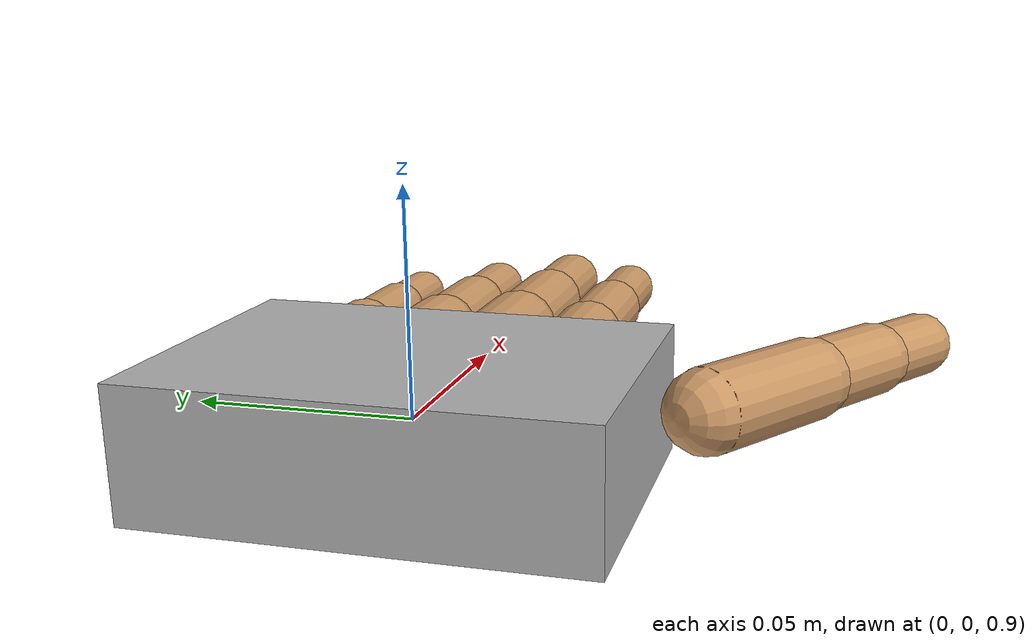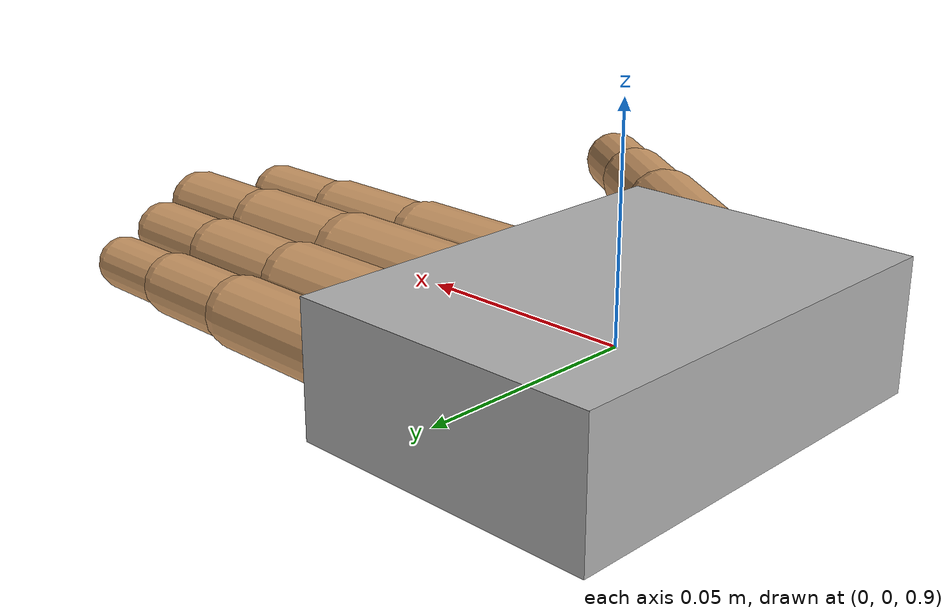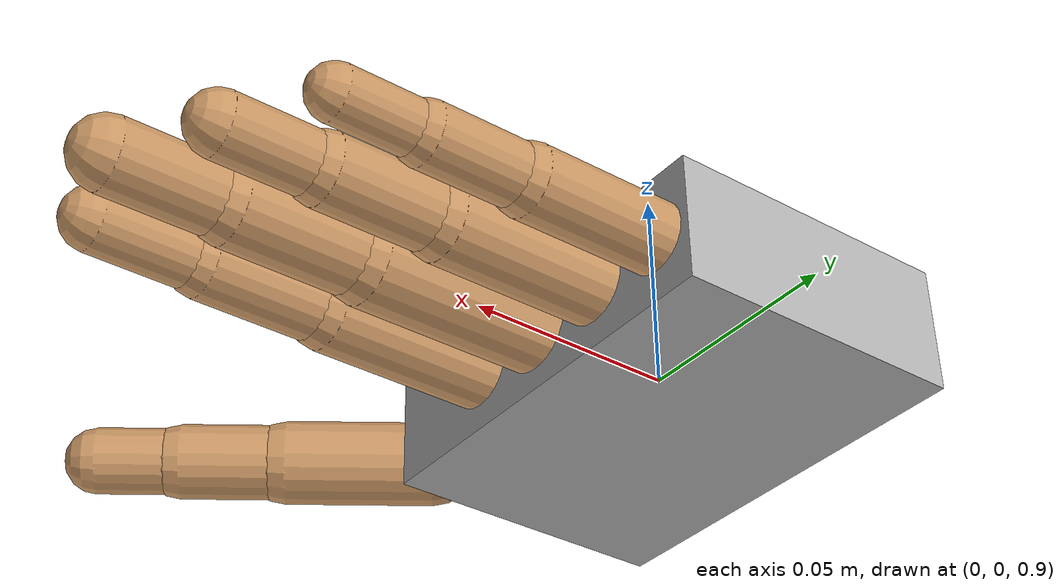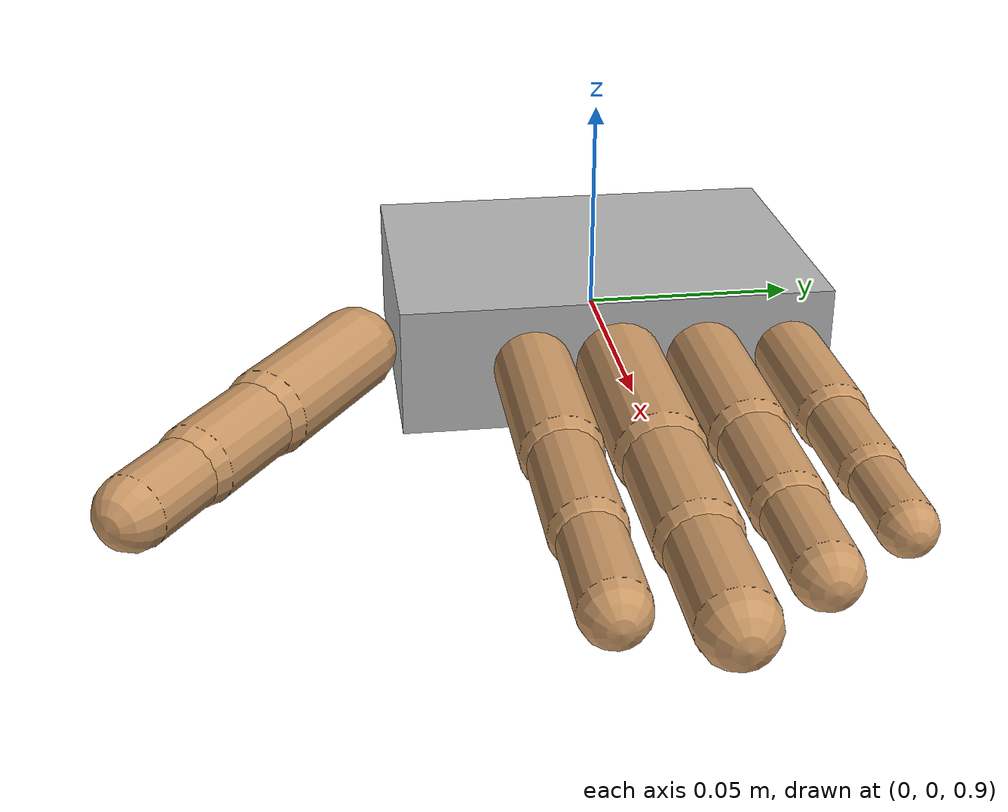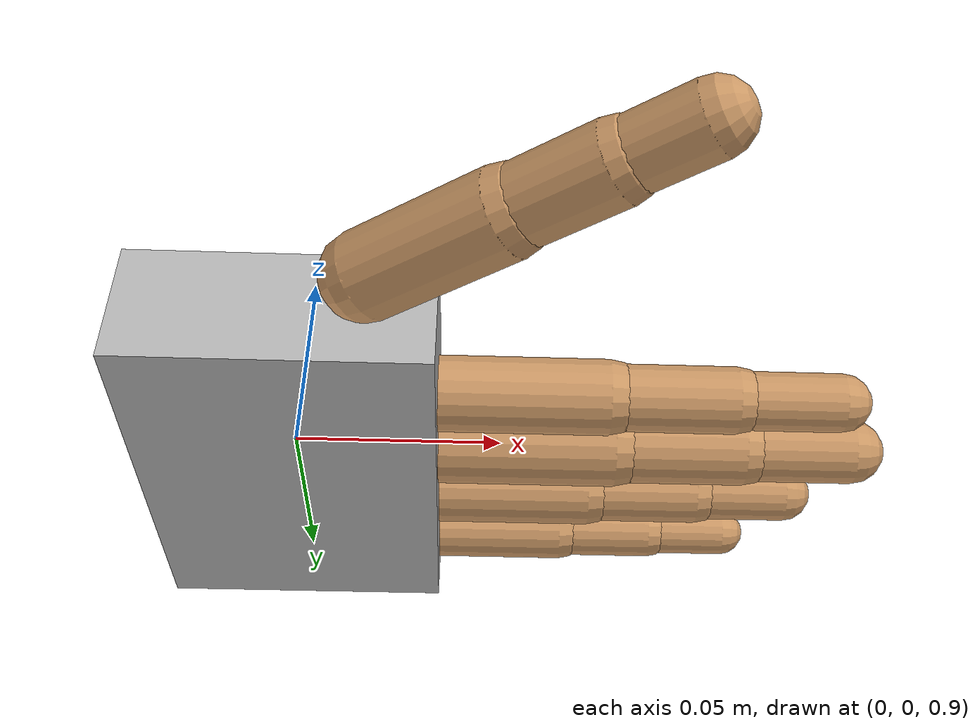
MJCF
<mujoco model="robot_hand">
  <compiler angle="radian"/>

  <default>
    <geom rgba="0.8 0.6 0.4 1" condim="3" friction="1 0.5 0.5"/>
    <joint damping="1.5" armature="0.02" limited="true"/>
    <motor ctrllimited="true" ctrlrange="-2 2"/>
  </default>

  <option timestep="0.002" integrator="RK4"/>

  <visual>
    <map znear="0.01" zfar="5"/>
  </visual>

  <asset>
    <texture type="skybox" builtin="gradient" rgb1="0.9 0.95 1" rgb2="0.2 0.3 0.5" width="256" height="256"/>
  </asset>

  <worldbody>
    <light pos="0 0 2" dir="0 0 -1" diffuse="1 1 1"/>
    <camera name="main" pos="0.35 -0.7 0.55" xyaxes="1 0 0 0 0 1"/>
    <geom name="floor" type="plane" size="1 1 0.1" rgba="0.95 0.95 0.95 1"/>

    <body name="hand" pos="0 0 0.9">
      <geom name="palm" type="box" size="0.035 0.05 0.015" rgba="0.7 0.7 0.7 1"/>

      <body name="index_base" pos="0.035 -0.02 0">
        <joint name="index_mcp" type="hinge" axis="0 1 0" range="0 2.0"/>
        <geom type="capsule" size="0.009" fromto="0 0 0 0.04 0 0"/>
        <body name="index_mid" pos="0.04 0 0">
          <joint name="index_pip" type="hinge" axis="0 1 0" range="0 2.1"/>
          <geom type="capsule" size="0.008" fromto="0 0 0 0.03 0 0"/>
          <body name="index_tip" pos="0.03 0 0">
            <joint name="index_dip" type="hinge" axis="0 1 0" range="0 1.8"/>
            <geom type="capsule" size="0.007" fromto="0 0 0 0.025 0 0"/>
            <site name="index_tip_site" pos="0.025 0 0" size="0.004"/>
          </body>
        </body>
      </body>

      <body name="middle_base" pos="0.035 0 0">
        <joint name="middle_mcp" type="hinge" axis="0 1 0" range="0 2.0"/>
        <geom type="capsule" size="0.01" fromto="0 0 0 0.043 0 0"/>
        <body name="middle_mid" pos="0.043 0 0">
          <joint name="middle_pip" type="hinge" axis="0 1 0" range="0 2.1"/>
          <geom type="capsule" size="0.009" fromto="0 0 0 0.032 0 0"/>
          <body name="middle_tip" pos="0.032 0 0">
            <joint name="middle_dip" type="hinge" axis="0 1 0" range="0 1.8"/>
            <geom type="capsule" size="0.008" fromto="0 0 0 0.027 0 0"/>
            <site name="middle_tip_site" pos="0.027 0 0" size="0.004"/>
          </body>
        </body>
      </body>

      <body name="ring_base" pos="0.035 0.02 0">
        <joint name="ring_mcp" type="hinge" axis="0 1 0" range="0 2.0"/>
        <geom type="capsule" size="0.009" fromto="0 0 0 0.038 0 0"/>
        <body name="ring_mid" pos="0.038 0 0">
          <joint name="ring_pip" type="hinge" axis="0 1 0" range="0 2.1"/>
          <geom type="capsule" size="0.008" fromto="0 0 0 0.028 0 0"/>
          <body name="ring_tip" pos="0.028 0 0">
            <joint name="ring_dip" type="hinge" axis="0 1 0" range="0 1.8"/>
            <geom type="capsule" size="0.007" fromto="0 0 0 0.023 0 0"/>
            <site name="ring_tip_site" pos="0.023 0 0" size="0.004"/>
          </body>
        </body>
      </body>

      <body name="pinky_base" pos="0.035 0.04 0">
        <joint name="pinky_mcp" type="hinge" axis="0 1 0" range="0 2.0"/>
        <geom type="capsule" size="0.008" fromto="0 0 0 0.032 0 0"/>
        <body name="pinky_mid" pos="0.032 0 0">
          <joint name="pinky_pip" type="hinge" axis="0 1 0" range="0 2.1"/>
          <geom type="capsule" size="0.007" fromto="0 0 0 0.024 0 0"/>
          <body name="pinky_tip" pos="0.024 0 0">
            <joint name="pinky_dip" type="hinge" axis="0 1 0" range="0 1.8"/>
            <geom type="capsule" size="0.006" fromto="0 0 0 0.02 0 0"/>
            <site name="pinky_tip_site" pos="0.02 0 0" size="0.004"/>
          </body>
        </body>
      </body>

      <body name="thumb_base" pos="0.02 -0.06 0" euler="0 0 -0.6">
        <joint name="thumb_mcp" type="hinge" axis="0 1 0" range="0 1.6"/>
        <geom type="capsule" size="0.01" fromto="0 0 0 0.035 0 0"/>
        <body name="thumb_mid" pos="0.035 0 0">
          <joint name="thumb_pip" type="hinge" axis="0 1 0" range="0 1.6"/>
          <geom type="capsule" size="0.009" fromto="0 0 0 0.025 0 0"/>
          <body name="thumb_tip" pos="0.025 0 0">
            <joint name="thumb_dip" type="hinge" axis="0 1 0" range="0 1.4"/>
            <geom type="capsule" size="0.008" fromto="0 0 0 0.02 0 0"/>
            <site name="thumb_tip_site" pos="0.02 0 0" size="0.004"/>
          </body>
        </body>
      </body>
    </body>
  </worldbody>

  <actuator>
    <motor name="motor_index_mcp" joint="index_mcp" gear="18"/>
    <motor name="motor_index_pip" joint="index_pip" gear="16"/>
    <motor name="motor_index_dip" joint="index_dip" gear="12"/>

    <motor name="motor_middle_mcp" joint="middle_mcp" gear="20"/>
    <motor name="motor_middle_pip" joint="middle_pip" gear="18"/>
    <motor name="motor_middle_dip" joint="middle_dip" gear="14"/>

    <motor name="motor_ring_mcp" joint="ring_mcp" gear="18"/>
    <motor name="motor_ring_pip" joint="ring_pip" gear="16"/>
    <motor name="motor_ring_dip" joint="ring_dip" gear="12"/>

    <motor name="motor_pinky_mcp" joint="pinky_mcp" gear="16"/>
    <motor name="motor_pinky_pip" joint="pinky_pip" gear="14"/>
    <motor name="motor_pinky_dip" joint="pinky_dip" gear="10"/>

    <motor name="motor_thumb_mcp" joint="thumb_mcp" gear="16"/>
    <motor name="motor_thumb_pip" joint="thumb_pip" gear="14"/>
    <motor name="motor_thumb_dip" joint="thumb_dip" gear="10"/>
  </actuator>
</mujoco>
